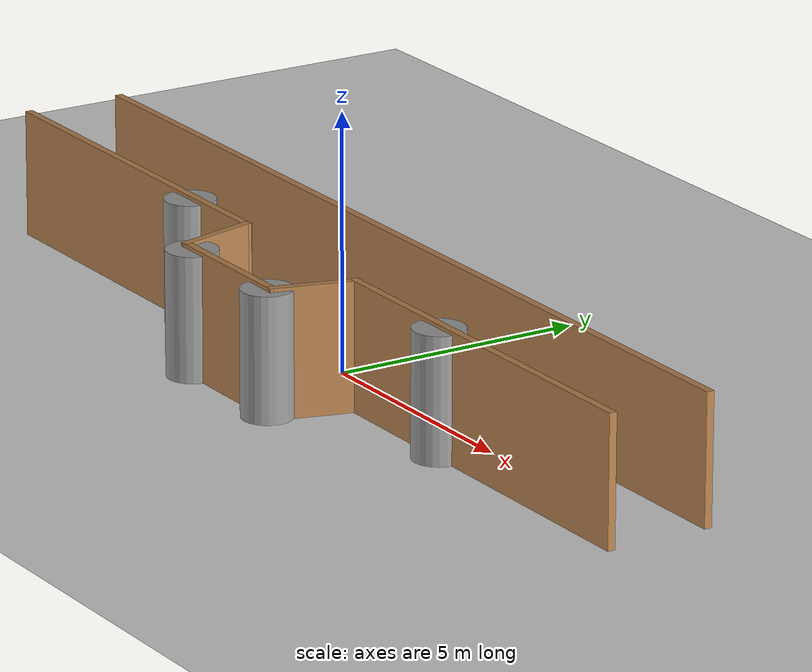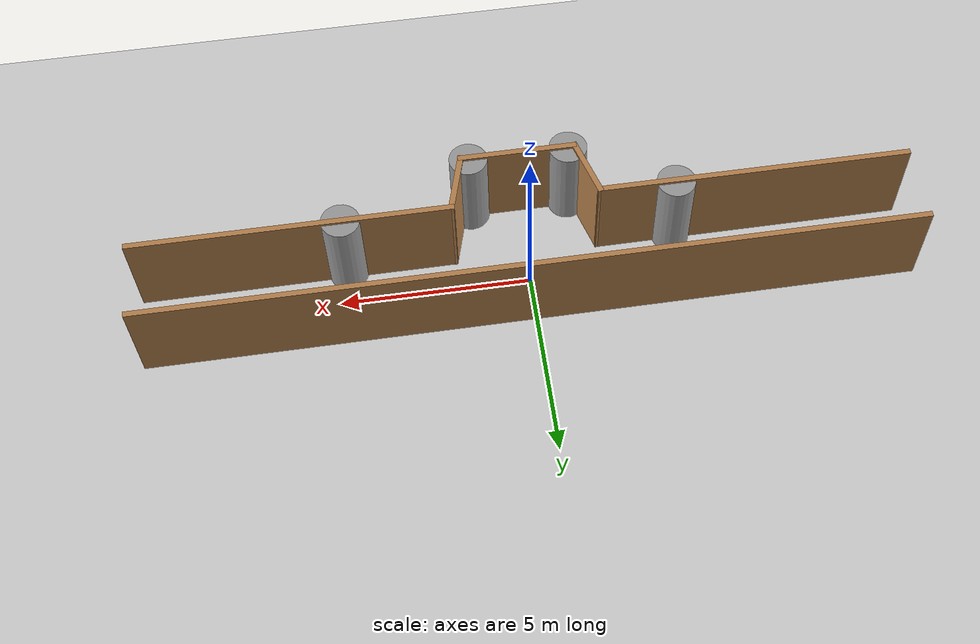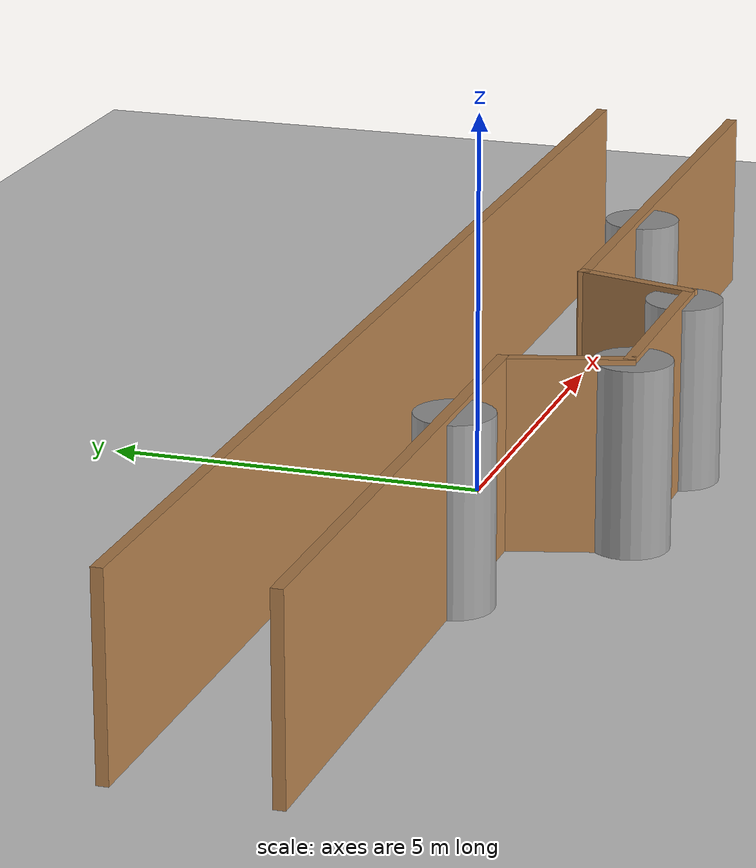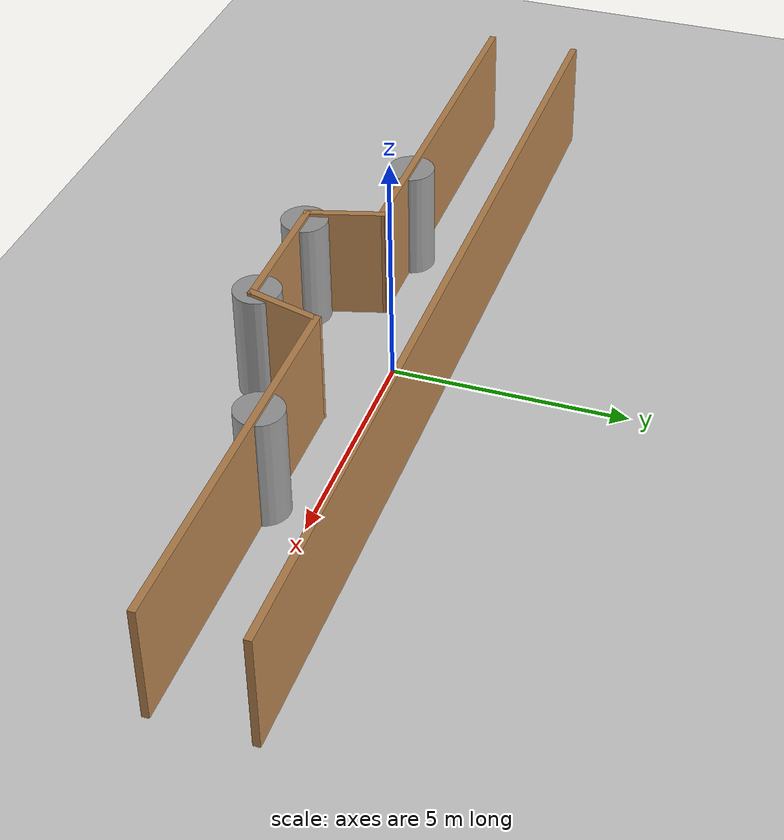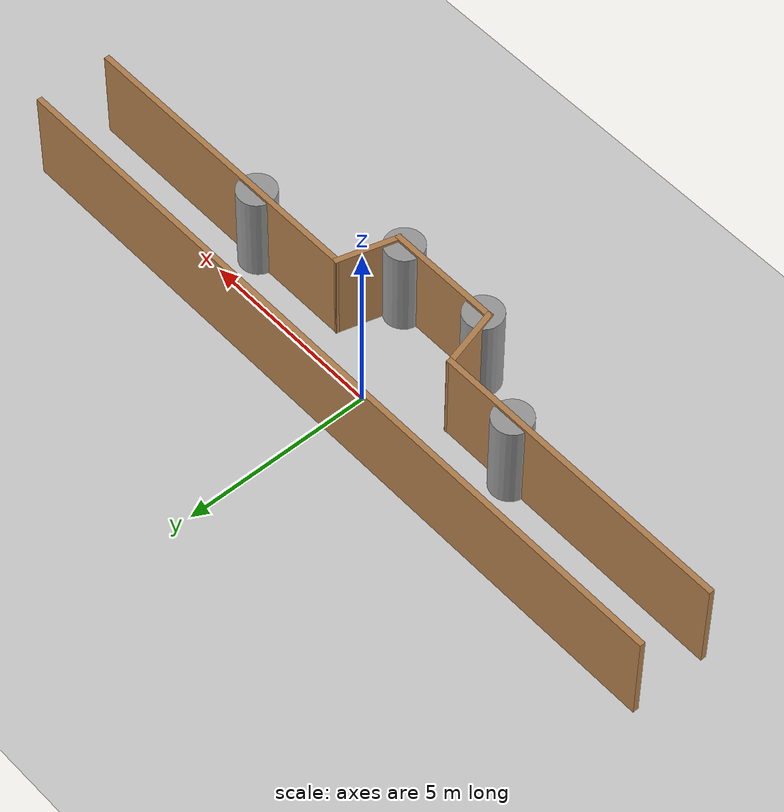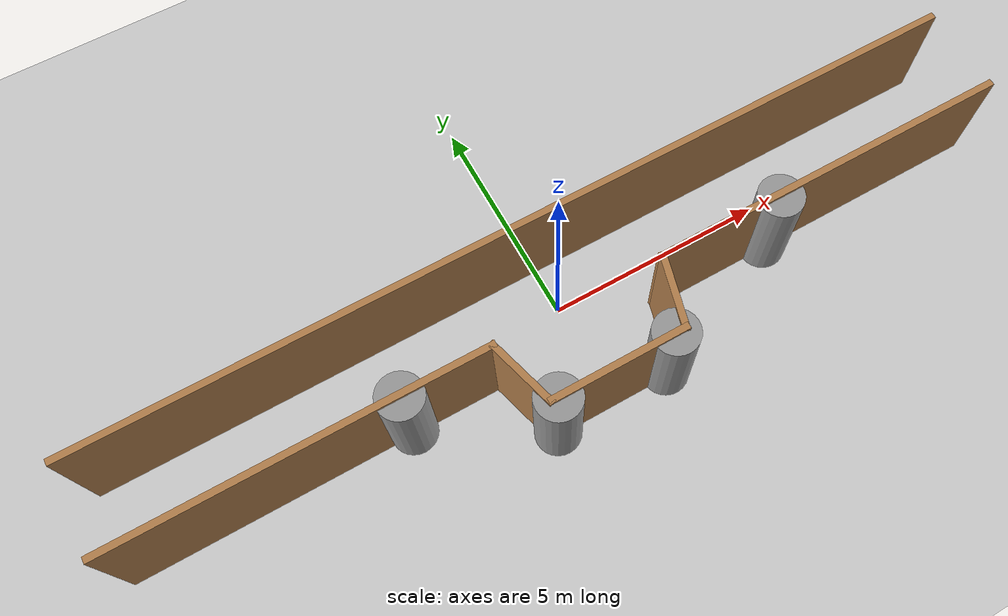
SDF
<sdf version="1.6">
 <world name="default">
  <light name="sun" type="directional">
   <pose>0 0 10 0 -0 0</pose>
   <diffuse>0.8 0.8 0.8 1</diffuse>
   <specular>0.2 0.2 0.2 1</specular>
   <attenuation>
    <range>1000</range>
    <constant>0.9</constant>
    <linear>0.01</linear>
    <quadratic>0.001</quadratic>
   </attenuation>
   <direction>-0.5 0.1 -0.9</direction>
  </light>
  <model name="ground_plane">
   <static>1</static>
   <link name="link">
    <collision name="collision">
     <geometry><plane><normal>0 0 1</normal><size>100 100</size></plane></geometry>
     <surface><friction><ode><mu>100</mu><mu2>50</mu2></ode></friction></surface>
    </collision>
    <visual name="visual">
     <cast_shadows>0</cast_shadows>
     <geometry><plane><normal>0 0 1</normal><size>100 100</size></plane></geometry>
     <material>
      <script><uri>file://media/materials/scripts/gazebo.material</uri><name>Gazebo/Grey</name></script>
     </material>
    </visual>
   </link>
  </model>
  <gravity>0 0 -9.8</gravity>
  <magnetic_field>6e-06 2.3e-05 -4.2e-05</magnetic_field>
  <atmosphere type="adiabatic"/>
  <physics name="default_physics" default="0" type="ode">
   <max_step_size>0.001</max_step_size>
   <real_time_factor>1</real_time_factor>
   <real_time_update_rate>1000</real_time_update_rate>
  </physics>
  <scene><ambient>0.4 0.4 0.4 1</ambient><background>0.7 0.7 0.7 1</background><shadows>1</shadows></scene>
  <spherical_coordinates>
   <surface_model>EARTH_WGS84</surface_model>
   <latitude_deg>0</latitude_deg>
   <longitude_deg>0</longitude_deg>
   <elevation>0</elevation>
   <heading_deg>0</heading_deg>
  </spherical_coordinates>
  <model name="Untitled">
   <pose>0.00822 -0.64049 0 0 -0 0</pose>
   <link name="Wall_0">
    <collision name="Wall_0_Collision">
     <geometry><box><size>8.2058 0.15 2.5</size></box></geometry>
     <pose>0 0 1.25 0 -0 0</pose>
    </collision>
    <visual name="Wall_0_Visual">
     <pose>0 0 1.25 0 -0 0</pose>
     <geometry><box><size>8.2058 0.15 2.5</size></box></geometry>
     <material>
      <script><uri>file://media/materials/scripts/gazebo.material</uri><name>Gazebo/Wood</name></script>
      <ambient>1 1 1 1</ambient>
     </material>
     <meta><layer>0</layer></meta>
    </visual>
    <pose>-5.972 -0.241375 0 0 -0 0</pose>
   </link>
   <link name="Wall_2">
    <collision name="Wall_2_Collision">
     <geometry><box><size>20.15 0.15 2.5</size></box></geometry>
     <pose>0 0 1.25 0 -0 0</pose>
    </collision>
    <visual name="Wall_2_Visual">
     <pose>0 0 1.25 0 -0 0</pose>
     <geometry><box><size>20.15 0.15 2.5</size></box></geometry>
     <material>
      <script><uri>file://media/materials/scripts/gazebo.material</uri><name>Gazebo/Wood</name></script>
      <ambient>1 1 1 1</ambient>
     </material>
     <meta><layer>0</layer></meta>
    </visual>
    <pose>-4e-06 1.75863 0 0 -0 0</pose>
   </link>
   <link name="Wall_4">
    <collision name="Wall_4_Collision">
     <geometry><box><size>1.70602 0.15 2.5</size></box></geometry>
     <pose>0 0 1.25 0 -0 0</pose>
    </collision>
    <visual name="Wall_4_Visual">
     <pose>0 0 1.25 0 -0 0</pose>
     <geometry><box><size>1.70602 0.15 2.5</size></box></geometry>
     <material>
      <script><uri>file://media/materials/scripts/gazebo.material</uri><name>Gazebo/Wood</name></script>
      <ambient>1 1 1 1</ambient>
     </material>
     <meta><layer>0</layer></meta>
    </visual>
    <pose>-1.73711 -0.991375 0 0 -0 -1.30164</pose>
   </link>
   <link name="Wall_5">
    <collision name="Wall_5_Collision">
     <geometry><box><size>3.0998 0.15 2.5</size></box></geometry>
     <pose>0 0 1.25 0 -0 0</pose>
    </collision>
    <visual name="Wall_5_Visual">
     <pose>0 0 1.25 0 -0 0</pose>
     <geometry><box><size>3.0998 0.15 2.5</size></box></geometry>
     <material>
      <script><uri>file://media/materials/scripts/gazebo.material</uri><name>Gazebo/Wood</name></script>
      <ambient>1 1 1 1</ambient>
     </material>
     <meta><layer>0</layer></meta>
    </visual>
    <pose>-0.024905 -1.74137 0 0 -0 0</pose>
   </link>
   <link name="Wall_6">
    <collision name="Wall_6_Collision">
     <geometry><box><size>1.70608 0.15 2.5</size></box></geometry>
     <pose>0 0 1.25 0 -0 0</pose>
    </collision>
    <visual name="Wall_6_Visual">
     <pose>0 0 1.25 0 -0 0</pose>
     <geometry><box><size>1.70608 0.15 2.5</size></box></geometry>
     <material>
      <script><uri>file://media/materials/scripts/gazebo.material</uri><name>Gazebo/Wood</name></script>
      <ambient>1 1 1 1</ambient>
     </material>
     <meta><layer>0</layer></meta>
    </visual>
    <pose>1.657 -0.991375 0 0 -0 1.3015</pose>
   </link>
   <link name="Wall_7">
    <collision name="Wall_7_Collision">
     <geometry><box><size>8.28602 0.15 2.5</size></box></geometry>
     <pose>0 0 1.25 0 -0 0</pose>
    </collision>
    <visual name="Wall_7_Visual">
     <pose>0 0 1.25 0 -0 0</pose>
     <geometry><box><size>8.28602 0.15 2.5</size></box></geometry>
     <material>
      <script><uri>file://media/materials/scripts/gazebo.material</uri><name>Gazebo/Wood</name></script>
      <ambient>1 1 1 1</ambient>
     </material>
     <meta><layer>0</layer></meta>
    </visual>
    <pose>5.932 -0.241375 0 0 -0 0</pose>
   </link>
   <static>1</static>
  </model>
  <model name="unit_cylinder">
   <static>1</static>
   <pose>-3.92125 -0.895881 1.2148 9e-06 4e-06 0.020738</pose>
   <link name="link">
    <inertial>
     <mass>100</mass>
     <inertia><ixx>0.145833</ixx><ixy>0</ixy><ixz>0</ixz><iyy>0.145833</iyy><iyz>0</iyz><izz>0.125</izz></inertia>
    </inertial>
    <collision name="collision">
     <geometry><cylinder><radius>0.5</radius><length>2.42961</length></cylinder></geometry>
    </collision>
    <visual name="visual">
     <geometry><cylinder><radius>0.5</radius><length>2.42961</length></cylinder></geometry>
     <material>
      <script><name>Gazebo/Grey</name><uri>file://media/materials/scripts/gazebo.material</uri></script>
     </material>
    </visual>
   </link>
  </model>
  <model name="unit_cylinder_clone">
   <static>1</static>
   <pose>4.68588 -0.915258 1.2148 8e-06 3e-06 0.022333</pose>
   <link name="link">
    <inertial>
     <mass>100</mass>
     <inertia><ixx>0.145833</ixx><ixy>0</ixy><ixz>0</ixz><iyy>0.145833</iyy><iyz>0</iyz><izz>0.125</izz></inertia>
    </inertial>
    <collision name="collision">
     <geometry><cylinder><radius>0.5</radius><length>2.42961</length></cylinder></geometry>
    </collision>
    <visual name="visual">
     <geometry><cylinder><radius>0.5</radius><length>2.42961</length></cylinder></geometry>
     <material>
      <script><name>Gazebo/Grey</name><uri>file://media/materials/scripts/gazebo.material</uri></script>
     </material>
    </visual>
   </link>
  </model>
  <model name="unit_cylinder_clone_0">
   <static>1</static>
   <pose>1.26371 -2.3638 1.2148 -2e-06 7e-06 0.028212</pose>
   <link name="link">
    <inertial>
     <mass>100</mass>
     <inertia><ixx>0.145833</ixx><ixy>0</ixy><ixz>0</ixz><iyy>0.145833</iyy><iyz>0</iyz><izz>0.125</izz></inertia>
    </inertial>
    <collision name="collision">
     <geometry><cylinder><radius>0.5</radius><length>2.42961</length></cylinder></geometry>
    </collision>
    <visual name="visual">
     <geometry><cylinder><radius>0.5</radius><length>2.42961</length></cylinder></geometry>
     <material>
      <script><name>Gazebo/Grey</name><uri>file://media/materials/scripts/gazebo.material</uri></script>
     </material>
    </visual>
   </link>
  </model>
  <model name="unit_cylinder_clone_1">
   <static>1</static>
   <pose>-1.34931 -2.37756 1.2148 2e-06 5e-06 0.019194</pose>
   <link name="link">
    <inertial>
     <mass>100</mass>
     <inertia><ixx>0.145833</ixx><ixy>0</ixy><ixz>0</ixz><iyy>0.145833</iyy><iyz>0</iyz><izz>0.125</izz></inertia>
    </inertial>
    <collision name="collision">
     <geometry><cylinder><radius>0.5</radius><length>2.42961</length></cylinder></geometry>
    </collision>
    <visual name="visual">
     <geometry><cylinder><radius>0.5</radius><length>2.42961</length></cylinder></geometry>
     <material>
      <script><name>Gazebo/Grey</name><uri>file://media/materials/scripts/gazebo.material</uri></script>
     </material>
    </visual>
   </link>
  </model>
 </world>
</sdf>
